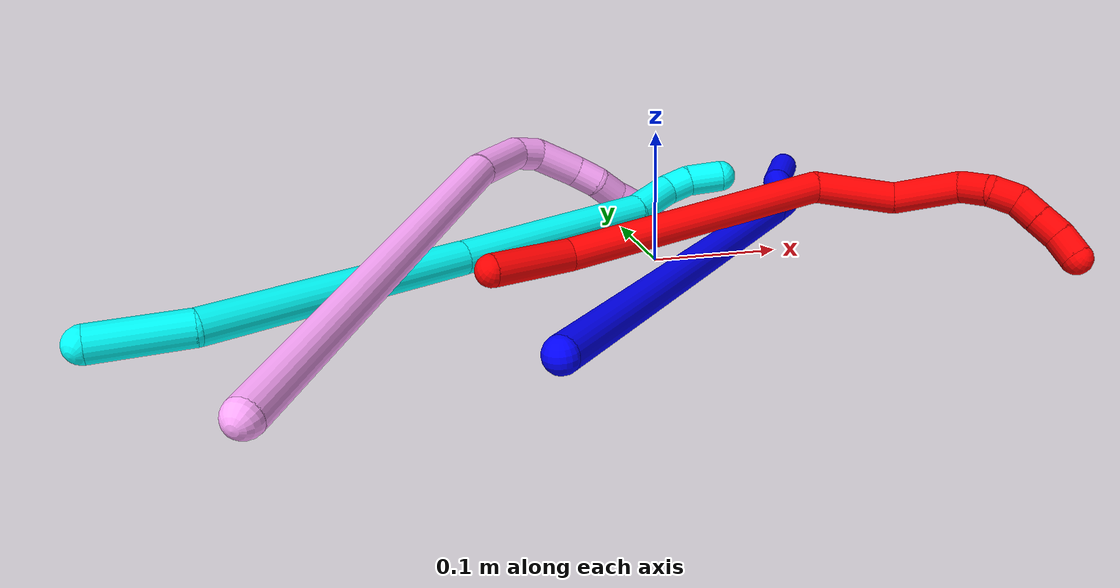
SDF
<sdf version="1.7">
 <world name="default">
  <model name="1">
   <static>0</static>
   <link name="1">
    <collision name="collision-cylinder-e_1_1_4">
     <pose>0.122902 0.132456 -0.017946 -1.70546 0.743468 -0.83945</pose>
     <geometry><cylinder><radius>0.0125</radius><length>0.363162</length></cylinder></geometry>
     <surface>
      <friction><ode><mu>1.16</mu><mu2>1.16</mu2><slip1>0</slip1><slip2>0</slip2></ode></friction>
      <contact><ode><kp>1e+06</kp><kd>1</kd><max_vel>0</max_vel><min_depth>0.001</min_depth></ode></contact>
     </surface>
    </collision>
    <visual name="visual-cylinder-e_1_1_4">
     <pose>0.122902 0.132456 -0.017946 -1.70546 0.743468 -0.83945</pose>
     <geometry><cylinder><radius>0.0125</radius><length>0.363162</length></cylinder></geometry>
     <material><ambient>0 0 1 1</ambient></material>
    </visual>
    <collision name="collision-cylinder-e_2_4_5">
     <pose>0.259202 0.281781 -0.039068 -1.7569 0.662747 -0.786546</pose>
     <geometry><cylinder><radius>0.0125</radius><length>0.043548</length></cylinder></geometry>
     <surface>
      <friction><ode><mu>1.16</mu><mu2>1.16</mu2><slip1>0</slip1><slip2>0</slip2></ode></friction>
      <contact><ode><kp>1e+06</kp><kd>1</kd><max_vel>0</max_vel><min_depth>0.001</min_depth></ode></contact>
     </surface>
    </collision>
    <visual name="visual-cylinder-e_2_4_5">
     <pose>0.259202 0.281781 -0.039068 -1.7569 0.662747 -0.786546</pose>
     <geometry><cylinder><radius>0.0125</radius><length>0.043548</length></cylinder></geometry>
     <material><ambient>0 0 1 1</ambient></material>
    </visual>
    <collision name="collision-cylinder-e_3_5_6">
     <pose>0.275672 0.308483 -0.041055 -1.45048 0.300837 -0.267088</pose>
     <geometry><cylinder><radius>0.0125</radius><length>0.020744</length></cylinder></geometry>
     <surface>
      <friction><ode><mu>1.16</mu><mu2>1.16</mu2><slip1>0</slip1><slip2>0</slip2></ode></friction>
      <contact><ode><kp>1e+06</kp><kd>1</kd><max_vel>0</max_vel><min_depth>0.001</min_depth></ode></contact>
     </surface>
    </collision>
    <visual name="visual-cylinder-e_3_5_6">
     <pose>0.275672 0.308483 -0.041055 -1.45048 0.300837 -0.267088</pose>
     <geometry><cylinder><radius>0.0125</radius><length>0.020744</length></cylinder></geometry>
     <material><ambient>0 0 1 1</ambient></material>
    </visual>
    <collision name="collision-cylinder-e_4_6_7">
     <pose>0.281954 0.330347 -0.03851 -1.45853 0.259066 -0.23176</pose>
     <geometry><cylinder><radius>0.0125</radius><length>0.025047</length></cylinder></geometry>
     <surface>
      <friction><ode><mu>1.16</mu><mu2>1.16</mu2><slip1>0</slip1><slip2>0</slip2></ode></friction>
      <contact><ode><kp>1e+06</kp><kd>1</kd><max_vel>0</max_vel><min_depth>0.001</min_depth></ode></contact>
     </surface>
    </collision>
    <visual name="visual-cylinder-e_4_6_7">
     <pose>0.281954 0.330347 -0.03851 -1.45853 0.259066 -0.23176</pose>
     <geometry><cylinder><radius>0.0125</radius><length>0.025047</length></cylinder></geometry>
     <material><ambient>0 0 1 1</ambient></material>
    </visual>
    <collision name="collision-cylinder-e_5_7_2">
     <pose>0.2975 0.36267 -0.037019 -1.56414 0.546259 -0.542812</pose>
     <geometry><cylinder><radius>0.0125</radius><length>0.047499</length></cylinder></geometry>
     <surface>
      <friction><ode><mu>1.16</mu><mu2>1.16</mu2><slip1>0</slip1><slip2>0</slip2></ode></friction>
      <contact><ode><kp>1e+06</kp><kd>1</kd><max_vel>0</max_vel><min_depth>0.001</min_depth></ode></contact>
     </surface>
    </collision>
    <visual name="visual-cylinder-e_5_7_2">
     <pose>0.2975 0.36267 -0.037019 -1.56414 0.546259 -0.542812</pose>
     <geometry><cylinder><radius>0.0125</radius><length>0.047499</length></cylinder></geometry>
     <material><ambient>0 0 1 1</ambient></material>
    </visual>
    <collision name="collision-sphere-2">
     <pose>0.309838 0.382962 -0.036884 0 -0 0</pose>
     <geometry><sphere><radius>0.0125</radius></sphere></geometry>
     <surface>
      <friction><ode><mu>1.16</mu><mu2>1.16</mu2><slip1>0</slip1><slip2>0</slip2></ode></friction>
      <contact><ode><kp>1e+06</kp><kd>1</kd><max_vel>0</max_vel><min_depth>0.001</min_depth></ode></contact>
     </surface>
    </collision>
    <visual name="visual-sphere-2">
     <pose>0.309838 0.382962 -0.036884 0 -0 0</pose>
     <geometry><sphere><radius>0.0125</radius></sphere></geometry>
     <material><ambient>0 0 1 1</ambient></material>
    </visual>
    <collision name="collision-sphere-7">
     <pose>0.285162 0.342377 -0.037154 0 -0 0</pose>
     <geometry><sphere><radius>0.0125</radius></sphere></geometry>
     <surface>
      <friction><ode><mu>1.16</mu><mu2>1.16</mu2><slip1>0</slip1><slip2>0</slip2></ode></friction>
      <contact><ode><kp>1e+06</kp><kd>1</kd><max_vel>0</max_vel><min_depth>0.001</min_depth></ode></contact>
     </surface>
    </collision>
    <visual name="visual-sphere-7">
     <pose>0.285162 0.342377 -0.037154 0 -0 0</pose>
     <geometry><sphere><radius>0.0125</radius></sphere></geometry>
     <material><ambient>0 0 1 1</ambient></material>
    </visual>
    <collision name="collision-sphere-6">
     <pose>0.278746 0.318318 -0.039866 0 -0 0</pose>
     <geometry><sphere><radius>0.0125</radius></sphere></geometry>
     <surface>
      <friction><ode><mu>1.16</mu><mu2>1.16</mu2><slip1>0</slip1><slip2>0</slip2></ode></friction>
      <contact><ode><kp>1e+06</kp><kd>1</kd><max_vel>0</max_vel><min_depth>0.001</min_depth></ode></contact>
     </surface>
    </collision>
    <visual name="visual-sphere-6">
     <pose>0.278746 0.318318 -0.039866 0 -0 0</pose>
     <geometry><sphere><radius>0.0125</radius></sphere></geometry>
     <material><ambient>0 0 1 1</ambient></material>
    </visual>
    <collision name="collision-sphere-5">
     <pose>0.272599 0.298649 -0.042244 0 -0 0</pose>
     <geometry><sphere><radius>0.0125</radius></sphere></geometry>
     <surface>
      <friction><ode><mu>1.16</mu><mu2>1.16</mu2><slip1>0</slip1><slip2>0</slip2></ode></friction>
      <contact><ode><kp>1e+06</kp><kd>1</kd><max_vel>0</max_vel><min_depth>0.001</min_depth></ode></contact>
     </surface>
    </collision>
    <visual name="visual-sphere-5">
     <pose>0.272599 0.298649 -0.042244 0 -0 0</pose>
     <geometry><sphere><radius>0.0125</radius></sphere></geometry>
     <material><ambient>0 0 1 1</ambient></material>
    </visual>
    <collision name="collision-sphere-1">
     <geometry><sphere><radius>0.0125</radius></sphere></geometry>
     <surface>
      <friction><ode><mu>1.16</mu><mu2>1.16</mu2><slip1>0</slip1><slip2>0</slip2></ode></friction>
      <contact><ode><kp>1e+06</kp><kd>1</kd><max_vel>0</max_vel><min_depth>0.001</min_depth></ode></contact>
     </surface>
    </collision>
    <visual name="visual-sphere-1">
     <geometry><sphere><radius>0.0125</radius></sphere></geometry>
     <material><ambient>0 0 1 1</ambient></material>
    </visual>
    <collision name="collision-sphere-4">
     <pose>0.245804 0.264912 -0.035892 0 -0 0</pose>
     <geometry><sphere><radius>0.0125</radius></sphere></geometry>
     <surface>
      <friction><ode><mu>1.16</mu><mu2>1.16</mu2><slip1>0</slip1><slip2>0</slip2></ode></friction>
      <contact><ode><kp>1e+06</kp><kd>1</kd><max_vel>0</max_vel><min_depth>0.001</min_depth></ode></contact>
     </surface>
    </collision>
    <visual name="visual-sphere-4">
     <pose>0.245804 0.264912 -0.035892 0 -0 0</pose>
     <geometry><sphere><radius>0.0125</radius></sphere></geometry>
     <material><ambient>0 0 1 1</ambient></material>
    </visual>
    <inertial>
     <pose>0.165665 0.184548 -0.023586 0 -0 0</pose>
     <mass>0.5</mass>
     <inertia>
      <ixx>-0.000195</ixx>
      <ixy>0</ixy>
      <ixz>0</ixz>
      <iyy>-0.000529</iyy>
      <iyz>0</iyz>
      <izz>-0.005667</izz>
     </inertia>
    </inertial>
   </link>
   <pose>-0.119265 -0.202807 0.011497 0.069731 -0.078074 0.006981</pose>
  </model>
  <model name="2">
   <static>0</static>
   <link name="2">
    <collision name="collision-cylinder-e_1_1_4">
     <pose>0.032264 0.00055 -0.001719 -2.83189 1.51493 -2.81439</pose>
     <geometry><cylinder><radius>0.0125</radius><length>0.064629</length></cylinder></geometry>
     <surface>
      <friction><ode><mu>1.16</mu><mu2>1.16</mu2><slip1>0</slip1><slip2>0</slip2></ode></friction>
      <contact><ode><kp>1e+06</kp><kd>1</kd><max_vel>0</max_vel><min_depth>0.001</min_depth></ode></contact>
     </surface>
    </collision>
    <visual name="visual-cylinder-e_1_1_4">
     <pose>0.032264 0.00055 -0.001719 -2.83189 1.51493 -2.81439</pose>
     <geometry><cylinder><radius>0.0125</radius><length>0.064629</length></cylinder></geometry>
     <material><ambient>1 0 0 1</ambient></material>
    </visual>
    <collision name="collision-cylinder-e_2_4_5">
     <pose>0.167679 0.000474 0.019483 0.027315 1.35207 0.02191</pose>
     <geometry><cylinder><radius>0.0125</radius><length>0.211338</length></cylinder></geometry>
     <surface>
      <friction><ode><mu>1.16</mu><mu2>1.16</mu2><slip1>0</slip1><slip2>0</slip2></ode></friction>
      <contact><ode><kp>1e+06</kp><kd>1</kd><max_vel>0</max_vel><min_depth>0.001</min_depth></ode></contact>
     </surface>
    </collision>
    <visual name="visual-cylinder-e_2_4_5">
     <pose>0.167679 0.000474 0.019483 0.027315 1.35207 0.02191</pose>
     <geometry><cylinder><radius>0.0125</radius><length>0.211338</length></cylinder></geometry>
     <material><ambient>1 0 0 1</ambient></material>
    </visual>
    <collision name="collision-cylinder-e_3_5_6">
     <pose>0.296552 -0.01533 0.053422 0.942866 0.94077 0.507223</pose>
     <geometry><cylinder><radius>0.0125</radius><length>0.063665</length></cylinder></geometry>
     <surface>
      <friction><ode><mu>1.16</mu><mu2>1.16</mu2><slip1>0</slip1><slip2>0</slip2></ode></friction>
      <contact><ode><kp>1e+06</kp><kd>1</kd><max_vel>0</max_vel><min_depth>0.001</min_depth></ode></contact>
     </surface>
    </collision>
    <visual name="visual-cylinder-e_3_5_6">
     <pose>0.296552 -0.01533 0.053422 0.942866 0.94077 0.507223</pose>
     <geometry><cylinder><radius>0.0125</radius><length>0.063665</length></cylinder></geometry>
     <material><ambient>1 0 0 1</ambient></material>
    </visual>
    <collision name="collision-cylinder-e_4_6_7">
     <pose>0.339345 -0.037839 0.082935 0.377441 0.709159 0.141187</pose>
     <geometry><cylinder><radius>0.0125</radius><length>0.052433</length></cylinder></geometry>
     <surface>
      <friction><ode><mu>1.16</mu><mu2>1.16</mu2><slip1>0</slip1><slip2>0</slip2></ode></friction>
      <contact><ode><kp>1e+06</kp><kd>1</kd><max_vel>0</max_vel><min_depth>0.001</min_depth></ode></contact>
     </surface>
    </collision>
    <visual name="visual-cylinder-e_4_6_7">
     <pose>0.339345 -0.037839 0.082935 0.377441 0.709159 0.141187</pose>
     <geometry><cylinder><radius>0.0125</radius><length>0.052433</length></cylinder></geometry>
     <material><ambient>1 0 0 1</ambient></material>
    </visual>
    <collision name="collision-cylinder-e_5_7_8">
     <pose>0.359954 -0.052384 0.110709 0.660773 0.292368 0.100904</pose>
     <geometry><cylinder><radius>0.0125</radius><length>0.024546</length></cylinder></geometry>
     <surface>
      <friction><ode><mu>1.16</mu><mu2>1.16</mu2><slip1>0</slip1><slip2>0</slip2></ode></friction>
      <contact><ode><kp>1e+06</kp><kd>1</kd><max_vel>0</max_vel><min_depth>0.001</min_depth></ode></contact>
     </surface>
    </collision>
    <visual name="visual-cylinder-e_5_7_8">
     <pose>0.359954 -0.052384 0.110709 0.660773 0.292368 0.100904</pose>
     <geometry><cylinder><radius>0.0125</radius><length>0.024546</length></cylinder></geometry>
     <material><ambient>1 0 0 1</ambient></material>
    </visual>
    <collision name="collision-cylinder-e_6_8_9">
     <pose>0.369758 -0.067067 0.124319 1.04526 0.627809 0.369752</pose>
     <geometry><cylinder><radius>0.0125</radius><length>0.02134</length></cylinder></geometry>
     <surface>
      <friction><ode><mu>1.16</mu><mu2>1.16</mu2><slip1>0</slip1><slip2>0</slip2></ode></friction>
      <contact><ode><kp>1e+06</kp><kd>1</kd><max_vel>0</max_vel><min_depth>0.001</min_depth></ode></contact>
     </surface>
    </collision>
    <visual name="visual-cylinder-e_6_8_9">
     <pose>0.369758 -0.067067 0.124319 1.04526 0.627809 0.369752</pose>
     <geometry><cylinder><radius>0.0125</radius><length>0.02134</length></cylinder></geometry>
     <material><ambient>1 0 0 1</ambient></material>
    </visual>
    <collision name="collision-cylinder-e_7_9_10">
     <pose>0.378635 -0.083928 0.13117 1.30882 0.262225 0.201649</pose>
     <geometry><cylinder><radius>0.0125</radius><length>0.020133</length></cylinder></geometry>
     <surface>
      <friction><ode><mu>1.16</mu><mu2>1.16</mu2><slip1>0</slip1><slip2>0</slip2></ode></friction>
      <contact><ode><kp>1e+06</kp><kd>1</kd><max_vel>0</max_vel><min_depth>0.001</min_depth></ode></contact>
     </surface>
    </collision>
    <visual name="visual-cylinder-e_7_9_10">
     <pose>0.378635 -0.083928 0.13117 1.30882 0.262225 0.201649</pose>
     <geometry><cylinder><radius>0.0125</radius><length>0.020133</length></cylinder></geometry>
     <material><ambient>1 0 0 1</ambient></material>
    </visual>
    <collision name="collision-cylinder-e_8_10_11">
     <pose>0.384128 -0.102696 0.136185 1.31057 0.28881 0.222605</pose>
     <geometry><cylinder><radius>0.0125</radius><length>0.020247</length></cylinder></geometry>
     <surface>
      <friction><ode><mu>1.16</mu><mu2>1.16</mu2><slip1>0</slip1><slip2>0</slip2></ode></friction>
      <contact><ode><kp>1e+06</kp><kd>1</kd><max_vel>0</max_vel><min_depth>0.001</min_depth></ode></contact>
     </surface>
    </collision>
    <visual name="visual-cylinder-e_8_10_11">
     <pose>0.384128 -0.102696 0.136185 1.31057 0.28881 0.222605</pose>
     <geometry><cylinder><radius>0.0125</radius><length>0.020247</length></cylinder></geometry>
     <material><ambient>1 0 0 1</ambient></material>
    </visual>
    <collision name="collision-cylinder-e_9_11_2">
     <pose>0.386904 -0.122623 0.14115 1.34096 -0.009921 -0.007868</pose>
     <geometry><cylinder><radius>0.0125</radius><length>0.02167</length></cylinder></geometry>
     <surface>
      <friction><ode><mu>1.16</mu><mu2>1.16</mu2><slip1>0</slip1><slip2>0</slip2></ode></friction>
      <contact><ode><kp>1e+06</kp><kd>1</kd><max_vel>0</max_vel><min_depth>0.001</min_depth></ode></contact>
     </surface>
    </collision>
    <visual name="visual-cylinder-e_9_11_2">
     <pose>0.386904 -0.122623 0.14115 1.34096 -0.009921 -0.007868</pose>
     <geometry><cylinder><radius>0.0125</radius><length>0.02167</length></cylinder></geometry>
     <material><ambient>1 0 0 1</ambient></material>
    </visual>
    <collision name="collision-sphere-2">
     <pose>0.386796 -0.133172 0.143618 0 -0 0</pose>
     <geometry><sphere><radius>0.0125</radius></sphere></geometry>
     <surface>
      <friction><ode><mu>1.16</mu><mu2>1.16</mu2><slip1>0</slip1><slip2>0</slip2></ode></friction>
      <contact><ode><kp>1e+06</kp><kd>1</kd><max_vel>0</max_vel><min_depth>0.001</min_depth></ode></contact>
     </surface>
    </collision>
    <visual name="visual-sphere-2">
     <pose>0.386796 -0.133172 0.143618 0 -0 0</pose>
     <geometry><sphere><radius>0.0125</radius></sphere></geometry>
     <material><ambient>1 0 0 1</ambient></material>
    </visual>
    <collision name="collision-sphere-11">
     <pose>0.387011 -0.112073 0.138681 0 -0 0</pose>
     <geometry><sphere><radius>0.0125</radius></sphere></geometry>
     <surface>
      <friction><ode><mu>1.16</mu><mu2>1.16</mu2><slip1>0</slip1><slip2>0</slip2></ode></friction>
      <contact><ode><kp>1e+06</kp><kd>1</kd><max_vel>0</max_vel><min_depth>0.001</min_depth></ode></contact>
     </surface>
    </collision>
    <visual name="visual-sphere-11">
     <pose>0.387011 -0.112073 0.138681 0 -0 0</pose>
     <geometry><sphere><radius>0.0125</radius></sphere></geometry>
     <material><ambient>1 0 0 1</ambient></material>
    </visual>
    <collision name="collision-sphere-10">
     <pose>0.381245 -0.093318 0.133688 0 -0 0</pose>
     <geometry><sphere><radius>0.0125</radius></sphere></geometry>
     <surface>
      <friction><ode><mu>1.16</mu><mu2>1.16</mu2><slip1>0</slip1><slip2>0</slip2></ode></friction>
      <contact><ode><kp>1e+06</kp><kd>1</kd><max_vel>0</max_vel><min_depth>0.001</min_depth></ode></contact>
     </surface>
    </collision>
    <visual name="visual-sphere-10">
     <pose>0.381245 -0.093318 0.133688 0 -0 0</pose>
     <geometry><sphere><radius>0.0125</radius></sphere></geometry>
     <material><ambient>1 0 0 1</ambient></material>
    </visual>
    <collision name="collision-sphere-9">
     <pose>0.376026 -0.074537 0.128651 0 -0 0</pose>
     <geometry><sphere><radius>0.0125</radius></sphere></geometry>
     <surface>
      <friction><ode><mu>1.16</mu><mu2>1.16</mu2><slip1>0</slip1><slip2>0</slip2></ode></friction>
      <contact><ode><kp>1e+06</kp><kd>1</kd><max_vel>0</max_vel><min_depth>0.001</min_depth></ode></contact>
     </surface>
    </collision>
    <visual name="visual-sphere-9">
     <pose>0.376026 -0.074537 0.128651 0 -0 0</pose>
     <geometry><sphere><radius>0.0125</radius></sphere></geometry>
     <material><ambient>1 0 0 1</ambient></material>
    </visual>
    <collision name="collision-sphere-4">
     <pose>0.064528 0.0011 -0.003437 0 -0 0</pose>
     <geometry><sphere><radius>0.0125</radius></sphere></geometry>
     <surface>
      <friction><ode><mu>1.16</mu><mu2>1.16</mu2><slip1>0</slip1><slip2>0</slip2></ode></friction>
      <contact><ode><kp>1e+06</kp><kd>1</kd><max_vel>0</max_vel><min_depth>0.001</min_depth></ode></contact>
     </surface>
    </collision>
    <visual name="visual-sphere-4">
     <pose>0.064528 0.0011 -0.003437 0 -0 0</pose>
     <geometry><sphere><radius>0.0125</radius></sphere></geometry>
     <material><ambient>1 0 0 1</ambient></material>
    </visual>
    <collision name="collision-sphere-1">
     <geometry><sphere><radius>0.0125</radius></sphere></geometry>
     <surface>
      <friction><ode><mu>1.16</mu><mu2>1.16</mu2><slip1>0</slip1><slip2>0</slip2></ode></friction>
      <contact><ode><kp>1e+06</kp><kd>1</kd><max_vel>0</max_vel><min_depth>0.001</min_depth></ode></contact>
     </surface>
    </collision>
    <visual name="visual-sphere-1">
     <geometry><sphere><radius>0.0125</radius></sphere></geometry>
     <material><ambient>1 0 0 1</ambient></material>
    </visual>
    <collision name="collision-sphere-8">
     <pose>0.363491 -0.059597 0.119987 0 -0 0</pose>
     <geometry><sphere><radius>0.0125</radius></sphere></geometry>
     <surface>
      <friction><ode><mu>1.16</mu><mu2>1.16</mu2><slip1>0</slip1><slip2>0</slip2></ode></friction>
      <contact><ode><kp>1e+06</kp><kd>1</kd><max_vel>0</max_vel><min_depth>0.001</min_depth></ode></contact>
     </surface>
    </collision>
    <visual name="visual-sphere-8">
     <pose>0.363491 -0.059597 0.119987 0 -0 0</pose>
     <geometry><sphere><radius>0.0125</radius></sphere></geometry>
     <material><ambient>1 0 0 1</ambient></material>
    </visual>
    <collision name="collision-sphere-5">
     <pose>0.270831 -0.000153 0.042404 0 -0 0</pose>
     <geometry><sphere><radius>0.0125</radius></sphere></geometry>
     <surface>
      <friction><ode><mu>1.16</mu><mu2>1.16</mu2><slip1>0</slip1><slip2>0</slip2></ode></friction>
      <contact><ode><kp>1e+06</kp><kd>1</kd><max_vel>0</max_vel><min_depth>0.001</min_depth></ode></contact>
     </surface>
    </collision>
    <visual name="visual-sphere-5">
     <pose>0.270831 -0.000153 0.042404 0 -0 0</pose>
     <geometry><sphere><radius>0.0125</radius></sphere></geometry>
     <material><ambient>1 0 0 1</ambient></material>
    </visual>
    <collision name="collision-sphere-6">
     <pose>0.322272 -0.030506 0.064439 0 -0 0</pose>
     <geometry><sphere><radius>0.0125</radius></sphere></geometry>
     <surface>
      <friction><ode><mu>1.16</mu><mu2>1.16</mu2><slip1>0</slip1><slip2>0</slip2></ode></friction>
      <contact><ode><kp>1e+06</kp><kd>1</kd><max_vel>0</max_vel><min_depth>0.001</min_depth></ode></contact>
     </surface>
    </collision>
    <visual name="visual-sphere-6">
     <pose>0.322272 -0.030506 0.064439 0 -0 0</pose>
     <geometry><sphere><radius>0.0125</radius></sphere></geometry>
     <material><ambient>1 0 0 1</ambient></material>
    </visual>
    <collision name="collision-sphere-7">
     <pose>0.356417 -0.045172 0.10143 0 -0 0</pose>
     <geometry><sphere><radius>0.0125</radius></sphere></geometry>
     <surface>
      <friction><ode><mu>1.16</mu><mu2>1.16</mu2><slip1>0</slip1><slip2>0</slip2></ode></friction>
      <contact><ode><kp>1e+06</kp><kd>1</kd><max_vel>0</max_vel><min_depth>0.001</min_depth></ode></contact>
     </surface>
    </collision>
    <visual name="visual-sphere-7">
     <pose>0.356417 -0.045172 0.10143 0 -0 0</pose>
     <geometry><sphere><radius>0.0125</radius></sphere></geometry>
     <material><ambient>1 0 0 1</ambient></material>
    </visual>
    <inertial>
     <pose>0.229411 -0.023935 0.051167 0 -0 0</pose>
     <mass>0.5</mass>
     <inertia>
      <ixx>0.000245</ixx>
      <ixy>0</ixy>
      <ixz>0</ixz>
      <iyy>0.00086</iyy>
      <iyz>0</iyz>
      <izz>-0.000794</izz>
     </inertia>
    </inertial>
   </link>
   <pose>-0.134701 -0.04296 0.01578 0.896339 -0.02807 0.27967</pose>
  </model>
  <model name="3">
   <static>0</static>
   <link name="3">
    <collision name="collision-cylinder-e_1_1_4">
     <pose>0.020303 0.013776 -0.019607 -2.52911 0.702899 -1.71839</pose>
     <geometry><cylinder><radius>0.0125</radius><length>0.062815</length></cylinder></geometry>
     <surface>
      <friction><ode><mu>1.16</mu><mu2>1.16</mu2><slip1>0</slip1><slip2>0</slip2></ode></friction>
      <contact><ode><kp>1e+06</kp><kd>1</kd><max_vel>0</max_vel><min_depth>0.001</min_depth></ode></contact>
     </surface>
    </collision>
    <visual name="visual-cylinder-e_1_1_4">
     <pose>0.020303 0.013776 -0.019607 -2.52911 0.702899 -1.71839</pose>
     <geometry><cylinder><radius>0.0125</radius><length>0.062815</length></cylinder></geometry>
     <material><ambient>0.003922 1 0.996078 1</ambient></material>
    </visual>
    <collision name="collision-cylinder-e_2_4_5">
     <pose>0.091919 0.051218 -0.115564 -2.84102 0.570694 -2.18856</pose>
     <geometry><cylinder><radius>0.0125</radius><length>0.189973</length></cylinder></geometry>
     <surface>
      <friction><ode><mu>1.16</mu><mu2>1.16</mu2><slip1>0</slip1><slip2>0</slip2></ode></friction>
      <contact><ode><kp>1e+06</kp><kd>1</kd><max_vel>0</max_vel><min_depth>0.001</min_depth></ode></contact>
     </surface>
    </collision>
    <visual name="visual-cylinder-e_2_4_5">
     <pose>0.091919 0.051218 -0.115564 -2.84102 0.570694 -2.18856</pose>
     <geometry><cylinder><radius>0.0125</radius><length>0.189973</length></cylinder></geometry>
     <material><ambient>0.003922 1 0.996078 1</ambient></material>
    </visual>
    <collision name="collision-cylinder-e_3_5_6">
     <pose>0.185894 0.097019 -0.255697 -2.80756 0.563539 -2.08684</pose>
     <geometry><cylinder><radius>0.0125</radius><length>0.159727</length></cylinder></geometry>
     <surface>
      <friction><ode><mu>1.16</mu><mu2>1.16</mu2><slip1>0</slip1><slip2>0</slip2></ode></friction>
      <contact><ode><kp>1e+06</kp><kd>1</kd><max_vel>0</max_vel><min_depth>0.001</min_depth></ode></contact>
     </surface>
    </collision>
    <visual name="visual-cylinder-e_3_5_6">
     <pose>0.185894 0.097019 -0.255697 -2.80756 0.563539 -2.08684</pose>
     <geometry><cylinder><radius>0.0125</radius><length>0.159727</length></cylinder></geometry>
     <material><ambient>0.003922 1 0.996078 1</ambient></material>
    </visual>
    <collision name="collision-cylinder-e_4_6_7">
     <pose>0.234451 0.124152 -0.337147 -2.86589 0.310711 -1.69175</pose>
     <geometry><cylinder><radius>0.0125</radius><length>0.038568</length></cylinder></geometry>
     <surface>
      <friction><ode><mu>1.16</mu><mu2>1.16</mu2><slip1>0</slip1><slip2>0</slip2></ode></friction>
      <contact><ode><kp>1e+06</kp><kd>1</kd><max_vel>0</max_vel><min_depth>0.001</min_depth></ode></contact>
     </surface>
    </collision>
    <visual name="visual-cylinder-e_4_6_7">
     <pose>0.234451 0.124152 -0.337147 -2.86589 0.310711 -1.69175</pose>
     <geometry><cylinder><radius>0.0125</radius><length>0.038568</length></cylinder></geometry>
     <material><ambient>0.003922 1 0.996078 1</ambient></material>
    </visual>
    <collision name="collision-cylinder-e_5_7_8">
     <pose>0.244693 0.135102 -0.362186 -2.46236 0.430065 -1.10738</pose>
     <geometry><cylinder><radius>0.0125</radius><length>0.020849</length></cylinder></geometry>
     <surface>
      <friction><ode><mu>1.16</mu><mu2>1.16</mu2><slip1>0</slip1><slip2>0</slip2></ode></friction>
      <contact><ode><kp>1e+06</kp><kd>1</kd><max_vel>0</max_vel><min_depth>0.001</min_depth></ode></contact>
     </surface>
    </collision>
    <visual name="visual-cylinder-e_5_7_8">
     <pose>0.244693 0.135102 -0.362186 -2.46236 0.430065 -1.10738</pose>
     <geometry><cylinder><radius>0.0125</radius><length>0.020849</length></cylinder></geometry>
     <material><ambient>0.003922 1 0.996078 1</ambient></material>
    </visual>
    <collision name="collision-cylinder-e_6_8_2">
     <pose>0.2577 0.149877 -0.3762 -2.2161 0.66511 -1.21111</pose>
     <geometry><cylinder><radius>0.0125</radius><length>0.028068</length></cylinder></geometry>
     <surface>
      <friction><ode><mu>1.16</mu><mu2>1.16</mu2><slip1>0</slip1><slip2>0</slip2></ode></friction>
      <contact><ode><kp>1e+06</kp><kd>1</kd><max_vel>0</max_vel><min_depth>0.001</min_depth></ode></contact>
     </surface>
    </collision>
    <visual name="visual-cylinder-e_6_8_2">
     <pose>0.2577 0.149877 -0.3762 -2.2161 0.66511 -1.21111</pose>
     <geometry><cylinder><radius>0.0125</radius><length>0.028068</length></cylinder></geometry>
     <material><ambient>0.003922 1 0.996078 1</ambient></material>
    </visual>
    <collision name="collision-sphere-2">
     <pose>0.266362 0.158699 -0.382841 0 -0 0</pose>
     <geometry><sphere><radius>0.0125</radius></sphere></geometry>
     <surface>
      <friction><ode><mu>1.16</mu><mu2>1.16</mu2><slip1>0</slip1><slip2>0</slip2></ode></friction>
      <contact><ode><kp>1e+06</kp><kd>1</kd><max_vel>0</max_vel><min_depth>0.001</min_depth></ode></contact>
     </surface>
    </collision>
    <visual name="visual-sphere-2">
     <pose>0.266362 0.158699 -0.382841 0 -0 0</pose>
     <geometry><sphere><radius>0.0125</radius></sphere></geometry>
     <material><ambient>0.003922 1 0.996078 1</ambient></material>
    </visual>
    <collision name="collision-sphere-4">
     <pose>0.040606 0.027553 -0.039214 0 -0 0</pose>
     <geometry><sphere><radius>0.0125</radius></sphere></geometry>
     <surface>
      <friction><ode><mu>1.16</mu><mu2>1.16</mu2><slip1>0</slip1><slip2>0</slip2></ode></friction>
      <contact><ode><kp>1e+06</kp><kd>1</kd><max_vel>0</max_vel><min_depth>0.001</min_depth></ode></contact>
     </surface>
    </collision>
    <visual name="visual-sphere-4">
     <pose>0.040606 0.027553 -0.039214 0 -0 0</pose>
     <geometry><sphere><radius>0.0125</radius></sphere></geometry>
     <material><ambient>0.003922 1 0.996078 1</ambient></material>
    </visual>
    <collision name="collision-sphere-1">
     <geometry><sphere><radius>0.0125</radius></sphere></geometry>
     <surface>
      <friction><ode><mu>1.16</mu><mu2>1.16</mu2><slip1>0</slip1><slip2>0</slip2></ode></friction>
      <contact><ode><kp>1e+06</kp><kd>1</kd><max_vel>0</max_vel><min_depth>0.001</min_depth></ode></contact>
     </surface>
    </collision>
    <visual name="visual-sphere-1">
     <geometry><sphere><radius>0.0125</radius></sphere></geometry>
     <material><ambient>0.003922 1 0.996078 1</ambient></material>
    </visual>
    <collision name="collision-sphere-8">
     <pose>0.249039 0.141054 -0.369558 0 -0 0</pose>
     <geometry><sphere><radius>0.0125</radius></sphere></geometry>
     <surface>
      <friction><ode><mu>1.16</mu><mu2>1.16</mu2><slip1>0</slip1><slip2>0</slip2></ode></friction>
      <contact><ode><kp>1e+06</kp><kd>1</kd><max_vel>0</max_vel><min_depth>0.001</min_depth></ode></contact>
     </surface>
    </collision>
    <visual name="visual-sphere-8">
     <pose>0.249039 0.141054 -0.369558 0 -0 0</pose>
     <geometry><sphere><radius>0.0125</radius></sphere></geometry>
     <material><ambient>0.003922 1 0.996078 1</ambient></material>
    </visual>
    <collision name="collision-sphere-5">
     <pose>0.143232 0.074884 -0.191914 0 -0 0</pose>
     <geometry><sphere><radius>0.0125</radius></sphere></geometry>
     <surface>
      <friction><ode><mu>1.16</mu><mu2>1.16</mu2><slip1>0</slip1><slip2>0</slip2></ode></friction>
      <contact><ode><kp>1e+06</kp><kd>1</kd><max_vel>0</max_vel><min_depth>0.001</min_depth></ode></contact>
     </surface>
    </collision>
    <visual name="visual-sphere-5">
     <pose>0.143232 0.074884 -0.191914 0 -0 0</pose>
     <geometry><sphere><radius>0.0125</radius></sphere></geometry>
     <material><ambient>0.003922 1 0.996078 1</ambient></material>
    </visual>
    <collision name="collision-sphere-6">
     <pose>0.228555 0.119154 -0.319479 0 -0 0</pose>
     <geometry><sphere><radius>0.0125</radius></sphere></geometry>
     <surface>
      <friction><ode><mu>1.16</mu><mu2>1.16</mu2><slip1>0</slip1><slip2>0</slip2></ode></friction>
      <contact><ode><kp>1e+06</kp><kd>1</kd><max_vel>0</max_vel><min_depth>0.001</min_depth></ode></contact>
     </surface>
    </collision>
    <visual name="visual-sphere-6">
     <pose>0.228555 0.119154 -0.319479 0 -0 0</pose>
     <geometry><sphere><radius>0.0125</radius></sphere></geometry>
     <material><ambient>0.003922 1 0.996078 1</ambient></material>
    </visual>
    <collision name="collision-sphere-7">
     <pose>0.240347 0.12915 -0.354814 0 -0 0</pose>
     <geometry><sphere><radius>0.0125</radius></sphere></geometry>
     <surface>
      <friction><ode><mu>1.16</mu><mu2>1.16</mu2><slip1>0</slip1><slip2>0</slip2></ode></friction>
      <contact><ode><kp>1e+06</kp><kd>1</kd><max_vel>0</max_vel><min_depth>0.001</min_depth></ode></contact>
     </surface>
    </collision>
    <visual name="visual-sphere-7">
     <pose>0.240347 0.12915 -0.354814 0 -0 0</pose>
     <geometry><sphere><radius>0.0125</radius></sphere></geometry>
     <material><ambient>0.003922 1 0.996078 1</ambient></material>
    </visual>
    <inertial>
     <pose>0.139613 0.075807 -0.190282 0 -0 0</pose>
     <mass>0.5</mass>
     <inertia>
      <ixx>-0.001086</ixx>
      <ixy>0</ixy>
      <ixz>0</ixz>
      <iyy>-4.3e-05</iyy>
      <iyz>0</iyz>
      <izz>-0.000801</izz>
     </inertia>
    </inertial>
   </link>
   <pose>-0.388506 -0.109882 0.012505 2.08521 0.796299 -0.202183</pose>
  </model>
  <model name="4">
   <static>0</static>
   <link name="4">
    <collision name="collision-cylinder-e_1_1_4">
     <pose>0.00531 0.006371 -0.150748 -3.09935 0.035176 -1.38877</pose>
     <geometry><cylinder><radius>0.0125</radius><length>0.301951</length></cylinder></geometry>
     <surface>
      <friction><ode><mu>1.16</mu><mu2>1.16</mu2><slip1>0</slip1><slip2>0</slip2></ode></friction>
      <contact><ode><kp>1e+06</kp><kd>1</kd><max_vel>0</max_vel><min_depth>0.001</min_depth></ode></contact>
     </surface>
    </collision>
    <visual name="visual-cylinder-e_1_1_4">
     <pose>0.00531 0.006371 -0.150748 -3.09935 0.035176 -1.38877</pose>
     <geometry><cylinder><radius>0.0125</radius><length>0.301951</length></cylinder></geometry>
     <material><ambient>1 0.65098 0.996078 1</ambient></material>
    </visual>
    <collision name="collision-cylinder-e_2_4_5">
     <pose>0.016843 0.01461 -0.326981 -3.06845 0.238904 -2.54985</pose>
     <geometry><cylinder><radius>0.0125</radius><length>0.052603</length></cylinder></geometry>
     <surface>
      <friction><ode><mu>1.16</mu><mu2>1.16</mu2><slip1>0</slip1><slip2>0</slip2></ode></friction>
      <contact><ode><kp>1e+06</kp><kd>1</kd><max_vel>0</max_vel><min_depth>0.001</min_depth></ode></contact>
     </surface>
    </collision>
    <visual name="visual-cylinder-e_2_4_5">
     <pose>0.016843 0.01461 -0.326981 -3.06845 0.238904 -2.54985</pose>
     <geometry><cylinder><radius>0.0125</radius><length>0.052603</length></cylinder></geometry>
     <material><ambient>1 0.65098 0.996078 1</ambient></material>
    </visual>
    <collision name="collision-cylinder-e_3_5_6">
     <pose>0.029165 0.01962 -0.360471 -2.76744 0.616851 -2.06939</pose>
     <geometry><cylinder><radius>0.0125</radius><length>0.021082</length></cylinder></geometry>
     <surface>
      <friction><ode><mu>1.16</mu><mu2>1.16</mu2><slip1>0</slip1><slip2>0</slip2></ode></friction>
      <contact><ode><kp>1e+06</kp><kd>1</kd><max_vel>0</max_vel><min_depth>0.001</min_depth></ode></contact>
     </surface>
    </collision>
    <visual name="visual-cylinder-e_3_5_6">
     <pose>0.029165 0.01962 -0.360471 -2.76744 0.616851 -2.06939</pose>
     <geometry><cylinder><radius>0.0125</radius><length>0.021082</length></cylinder></geometry>
     <material><ambient>1 0.65098 0.996078 1</ambient></material>
    </visual>
    <collision name="collision-cylinder-e_4_6_7">
     <pose>0.050365 0.028869 -0.375184 -2.40321 1.02986 -1.94203</pose>
     <geometry><cylinder><radius>0.0125</radius><length>0.035237</length></cylinder></geometry>
     <surface>
      <friction><ode><mu>1.16</mu><mu2>1.16</mu2><slip1>0</slip1><slip2>0</slip2></ode></friction>
      <contact><ode><kp>1e+06</kp><kd>1</kd><max_vel>0</max_vel><min_depth>0.001</min_depth></ode></contact>
     </surface>
    </collision>
    <visual name="visual-cylinder-e_4_6_7">
     <pose>0.050365 0.028869 -0.375184 -2.40321 1.02986 -1.94203</pose>
     <geometry><cylinder><radius>0.0125</radius><length>0.035237</length></cylinder></geometry>
     <material><ambient>1 0.65098 0.996078 1</ambient></material>
    </visual>
    <collision name="collision-cylinder-e_5_7_8">
     <pose>0.074494 0.038793 -0.384338 -2.14032 1.10536 -1.69036</pose>
     <geometry><cylinder><radius>0.0125</radius><length>0.020201</length></cylinder></geometry>
     <surface>
      <friction><ode><mu>1.16</mu><mu2>1.16</mu2><slip1>0</slip1><slip2>0</slip2></ode></friction>
      <contact><ode><kp>1e+06</kp><kd>1</kd><max_vel>0</max_vel><min_depth>0.001</min_depth></ode></contact>
     </surface>
    </collision>
    <visual name="visual-cylinder-e_5_7_8">
     <pose>0.074494 0.038793 -0.384338 -2.14032 1.10536 -1.69036</pose>
     <geometry><cylinder><radius>0.0125</radius><length>0.020201</length></cylinder></geometry>
     <material><ambient>1 0.65098 0.996078 1</ambient></material>
    </visual>
    <collision name="collision-cylinder-e_6_8_9">
     <pose>0.093485 0.043729 -0.391181 -2.89271 1.14343 -2.75755</pose>
     <geometry><cylinder><radius>0.0125</radius><length>0.021899</length></cylinder></geometry>
     <surface>
      <friction><ode><mu>1.16</mu><mu2>1.16</mu2><slip1>0</slip1><slip2>0</slip2></ode></friction>
      <contact><ode><kp>1e+06</kp><kd>1</kd><max_vel>0</max_vel><min_depth>0.001</min_depth></ode></contact>
     </surface>
    </collision>
    <visual name="visual-cylinder-e_6_8_9">
     <pose>0.093485 0.043729 -0.391181 -2.89271 1.14343 -2.75755</pose>
     <geometry><cylinder><radius>0.0125</radius><length>0.021899</length></cylinder></geometry>
     <material><ambient>1 0.65098 0.996078 1</ambient></material>
    </visual>
    <collision name="collision-cylinder-e_7_9_10">
     <pose>0.115065 0.048017 -0.401337 -2.63825 1.05584 -2.311</pose>
     <geometry><cylinder><radius>0.0125</radius><length>0.026694</length></cylinder></geometry>
     <surface>
      <friction><ode><mu>1.16</mu><mu2>1.16</mu2><slip1>0</slip1><slip2>0</slip2></ode></friction>
      <contact><ode><kp>1e+06</kp><kd>1</kd><max_vel>0</max_vel><min_depth>0.001</min_depth></ode></contact>
     </surface>
    </collision>
    <visual name="visual-cylinder-e_7_9_10">
     <pose>0.115065 0.048017 -0.401337 -2.63825 1.05584 -2.311</pose>
     <geometry><cylinder><radius>0.0125</radius><length>0.026694</length></cylinder></geometry>
     <material><ambient>1 0.65098 0.996078 1</ambient></material>
    </visual>
    <collision name="collision-cylinder-e_8_10_2">
     <pose>0.135613 0.050504 -0.411903 3.00016 1.07282 2.90443</pose>
     <geometry><cylinder><radius>0.0125</radius><length>0.020334</length></cylinder></geometry>
     <surface>
      <friction><ode><mu>1.16</mu><mu2>1.16</mu2><slip1>0</slip1><slip2>0</slip2></ode></friction>
      <contact><ode><kp>1e+06</kp><kd>1</kd><max_vel>0</max_vel><min_depth>0.001</min_depth></ode></contact>
     </surface>
    </collision>
    <visual name="visual-cylinder-e_8_10_2">
     <pose>0.135613 0.050504 -0.411903 3.00016 1.07282 2.90443</pose>
     <geometry><cylinder><radius>0.0125</radius><length>0.020334</length></cylinder></geometry>
     <material><ambient>1 0.65098 0.996078 1</ambient></material>
    </visual>
    <collision name="collision-sphere-2">
     <pose>0.144546 0.049819 -0.416711 0 -0 0</pose>
     <geometry><sphere><radius>0.0125</radius></sphere></geometry>
     <surface>
      <friction><ode><mu>1.16</mu><mu2>1.16</mu2><slip1>0</slip1><slip2>0</slip2></ode></friction>
      <contact><ode><kp>1e+06</kp><kd>1</kd><max_vel>0</max_vel><min_depth>0.001</min_depth></ode></contact>
     </surface>
    </collision>
    <visual name="visual-sphere-2">
     <pose>0.144546 0.049819 -0.416711 0 -0 0</pose>
     <geometry><sphere><radius>0.0125</radius></sphere></geometry>
     <material><ambient>1 0.65098 0.996078 1</ambient></material>
    </visual>
    <collision name="collision-sphere-10">
     <pose>0.126681 0.051188 -0.407095 0 -0 0</pose>
     <geometry><sphere><radius>0.0125</radius></sphere></geometry>
     <surface>
      <friction><ode><mu>1.16</mu><mu2>1.16</mu2><slip1>0</slip1><slip2>0</slip2></ode></friction>
      <contact><ode><kp>1e+06</kp><kd>1</kd><max_vel>0</max_vel><min_depth>0.001</min_depth></ode></contact>
     </surface>
    </collision>
    <visual name="visual-sphere-10">
     <pose>0.126681 0.051188 -0.407095 0 -0 0</pose>
     <geometry><sphere><radius>0.0125</radius></sphere></geometry>
     <material><ambient>1 0.65098 0.996078 1</ambient></material>
    </visual>
    <collision name="collision-sphere-9">
     <pose>0.103449 0.044847 -0.395579 0 -0 0</pose>
     <geometry><sphere><radius>0.0125</radius></sphere></geometry>
     <surface>
      <friction><ode><mu>1.16</mu><mu2>1.16</mu2><slip1>0</slip1><slip2>0</slip2></ode></friction>
      <contact><ode><kp>1e+06</kp><kd>1</kd><max_vel>0</max_vel><min_depth>0.001</min_depth></ode></contact>
     </surface>
    </collision>
    <visual name="visual-sphere-9">
     <pose>0.103449 0.044847 -0.395579 0 -0 0</pose>
     <geometry><sphere><radius>0.0125</radius></sphere></geometry>
     <material><ambient>1 0.65098 0.996078 1</ambient></material>
    </visual>
    <collision name="collision-sphere-4">
     <pose>0.010619 0.012743 -0.301495 0 -0 0</pose>
     <geometry><sphere><radius>0.0125</radius></sphere></geometry>
     <surface>
      <friction><ode><mu>1.16</mu><mu2>1.16</mu2><slip1>0</slip1><slip2>0</slip2></ode></friction>
      <contact><ode><kp>1e+06</kp><kd>1</kd><max_vel>0</max_vel><min_depth>0.001</min_depth></ode></contact>
     </surface>
    </collision>
    <visual name="visual-sphere-4">
     <pose>0.010619 0.012743 -0.301495 0 -0 0</pose>
     <geometry><sphere><radius>0.0125</radius></sphere></geometry>
     <material><ambient>1 0.65098 0.996078 1</ambient></material>
    </visual>
    <collision name="collision-sphere-1">
     <geometry><sphere><radius>0.0125</radius></sphere></geometry>
     <surface>
      <friction><ode><mu>1.16</mu><mu2>1.16</mu2><slip1>0</slip1><slip2>0</slip2></ode></friction>
      <contact><ode><kp>1e+06</kp><kd>1</kd><max_vel>0</max_vel><min_depth>0.001</min_depth></ode></contact>
     </surface>
    </collision>
    <visual name="visual-sphere-1">
     <geometry><sphere><radius>0.0125</radius></sphere></geometry>
     <material><ambient>1 0.65098 0.996078 1</ambient></material>
    </visual>
    <collision name="collision-sphere-8">
     <pose>0.08352 0.042611 -0.386782 0 -0 0</pose>
     <geometry><sphere><radius>0.0125</radius></sphere></geometry>
     <surface>
      <friction><ode><mu>1.16</mu><mu2>1.16</mu2><slip1>0</slip1><slip2>0</slip2></ode></friction>
      <contact><ode><kp>1e+06</kp><kd>1</kd><max_vel>0</max_vel><min_depth>0.001</min_depth></ode></contact>
     </surface>
    </collision>
    <visual name="visual-sphere-8">
     <pose>0.08352 0.042611 -0.386782 0 -0 0</pose>
     <geometry><sphere><radius>0.0125</radius></sphere></geometry>
     <material><ambient>1 0.65098 0.996078 1</ambient></material>
    </visual>
    <collision name="collision-sphere-5">
     <pose>0.023067 0.016477 -0.352467 0 -0 0</pose>
     <geometry><sphere><radius>0.0125</radius></sphere></geometry>
     <surface>
      <friction><ode><mu>1.16</mu><mu2>1.16</mu2><slip1>0</slip1><slip2>0</slip2></ode></friction>
      <contact><ode><kp>1e+06</kp><kd>1</kd><max_vel>0</max_vel><min_depth>0.001</min_depth></ode></contact>
     </surface>
    </collision>
    <visual name="visual-sphere-5">
     <pose>0.023067 0.016477 -0.352467 0 -0 0</pose>
     <geometry><sphere><radius>0.0125</radius></sphere></geometry>
     <material><ambient>1 0.65098 0.996078 1</ambient></material>
    </visual>
    <collision name="collision-sphere-6">
     <pose>0.035262 0.022762 -0.368474 0 -0 0</pose>
     <geometry><sphere><radius>0.0125</radius></sphere></geometry>
     <surface>
      <friction><ode><mu>1.16</mu><mu2>1.16</mu2><slip1>0</slip1><slip2>0</slip2></ode></friction>
      <contact><ode><kp>1e+06</kp><kd>1</kd><max_vel>0</max_vel><min_depth>0.001</min_depth></ode></contact>
     </surface>
    </collision>
    <visual name="visual-sphere-6">
     <pose>0.035262 0.022762 -0.368474 0 -0 0</pose>
     <geometry><sphere><radius>0.0125</radius></sphere></geometry>
     <material><ambient>1 0.65098 0.996078 1</ambient></material>
    </visual>
    <collision name="collision-sphere-7">
     <pose>0.065468 0.034976 -0.381894 0 -0 0</pose>
     <geometry><sphere><radius>0.0125</radius></sphere></geometry>
     <surface>
      <friction><ode><mu>1.16</mu><mu2>1.16</mu2><slip1>0</slip1><slip2>0</slip2></ode></friction>
      <contact><ode><kp>1e+06</kp><kd>1</kd><max_vel>0</max_vel><min_depth>0.001</min_depth></ode></contact>
     </surface>
    </collision>
    <visual name="visual-sphere-7">
     <pose>0.065468 0.034976 -0.381894 0 -0 0</pose>
     <geometry><sphere><radius>0.0125</radius></sphere></geometry>
     <material><ambient>1 0.65098 0.996078 1</ambient></material>
    </visual>
    <inertial>
     <pose>0.02852 0.016346 -0.237915 0 -0 0</pose>
     <mass>0.5</mass>
     <inertia>
      <ixx>-0.001866</ixx>
      <ixy>0</ixy>
      <ixz>0</ixz>
      <iyy>-0.002666</iyy>
      <iyz>0</iyz>
      <izz>-0.000231</izz>
     </inertia>
    </inertial>
   </link>
   <pose>-0.292021 -0.240476 0.011758 1.98965 0.979907 -0.158309</pose>
  </model>
 </world>
</sdf>
